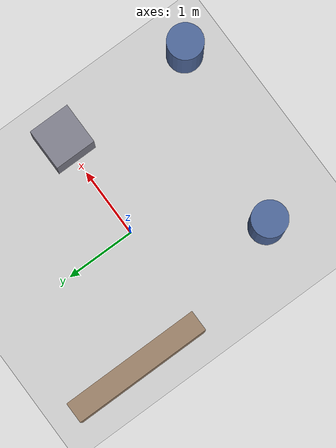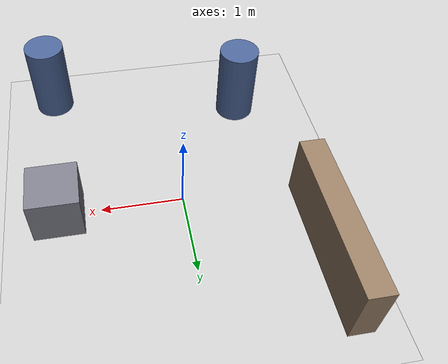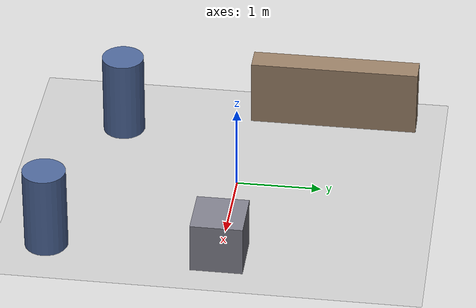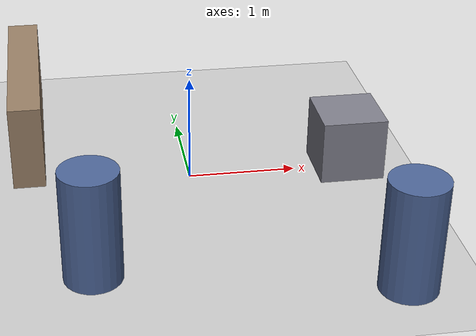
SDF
<sdf version="1.6">
 <world name="default">
  <include><uri>model://sun</uri></include>
  <include><uri>model://ground_plane</uri></include>
  <model name="obs_box_1">
   <static>true</static>
   <pose>1.5 0.0 0.3 0 0 0</pose>
   <link name="link">
    <collision name="c"><geometry><box><size>0.6 0.6 0.6</size></box></geometry></collision>
    <visual name="v">
     <geometry><box><size>0.6 0.6 0.6</size></box></geometry>
     <material><ambient>0.4 0.4 0.45 1</ambient><diffuse>0.5 0.5 0.55 1</diffuse></material>
    </visual>
   </link>
  </model>
  <model name="obs_wall_1">
   <static>true</static>
   <pose>-1.5 1.0 0.4 0 0 0</pose>
   <link name="link">
    <collision name="c"><geometry><box><size>0.3 2.0 0.8</size></box></geometry></collision>
    <visual name="v">
     <geometry><box><size>0.3 2.0 0.8</size></box></geometry>
     <material><ambient>0.45 0.4 0.35 1</ambient><diffuse>0.6 0.5 0.4 1</diffuse></material>
    </visual>
   </link>
  </model>
  <model name="obs_pole_1">
   <static>true</static>
   <pose>-1.0 -1.5 0.5 0 0 0</pose>
   <link name="link">
    <collision name="c">
     <geometry><cylinder><radius>0.25</radius><length>1.0</length></cylinder></geometry>
    </collision>
    <visual name="v">
     <geometry><cylinder><radius>0.25</radius><length>1.0</length></cylinder></geometry>
     <material><ambient>0.2 0.3 0.5 1</ambient><diffuse>0.3 0.4 0.6 1</diffuse></material>
    </visual>
   </link>
  </model>
  <model name="obs_pole_2">
   <static>true</static>
   <pose>1.5 -2.0 0.5 0 0 0</pose>
   <link name="link">
    <collision name="c">
     <geometry><cylinder><radius>0.25</radius><length>1.0</length></cylinder></geometry>
    </collision>
    <visual name="v">
     <geometry><cylinder><radius>0.25</radius><length>1.0</length></cylinder></geometry>
     <material><ambient>0.2 0.3 0.5 1</ambient><diffuse>0.3 0.4 0.6 1</diffuse></material>
    </visual>
   </link>
  </model>
 </world>
</sdf>
